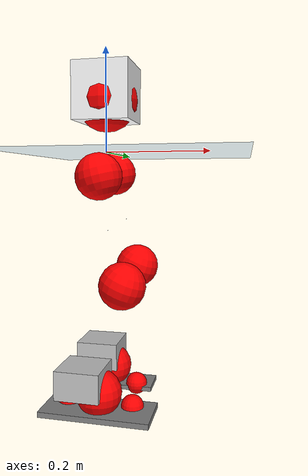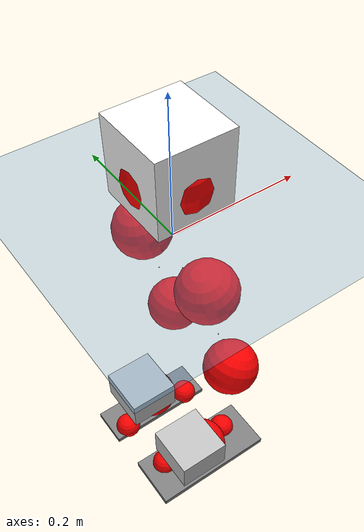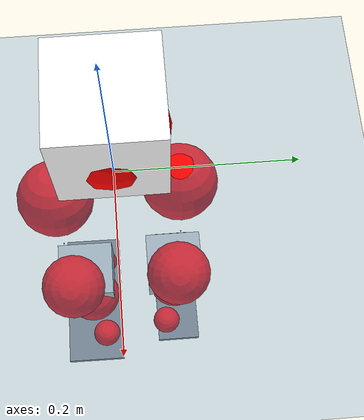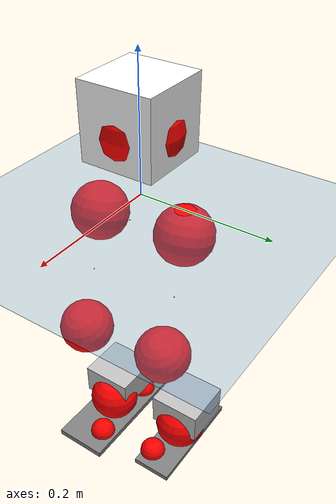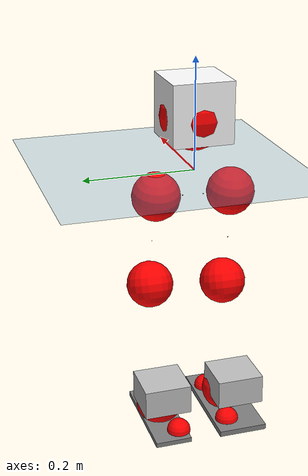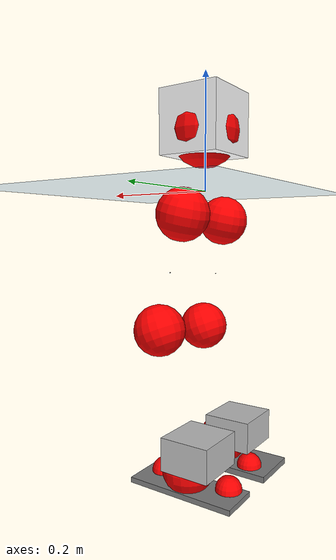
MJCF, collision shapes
<mujoco model="pi_12dof_release_v1">
  <compiler angle="radian" assetdir="assets" balanceinertia="true" inertiafromgeom="false"/>

  <option timestep="0.005" density="1.2" viscosity="2e-05"/>

  <size nkey="1"/>

  <visual>
    <quality shadowsize="8192"/>
    <map shadowclip="0.5"/>
  </visual>

  <default>
    <default class="/">
      <joint armature="0.01" damping="0.01" frictionloss="0.01"/>
      <geom contype="0" conaffinity="0" group="1" solref="-1000 -80"/>
      <site size="0.01 0.005 0.005" group="5"/>
      <general forcelimited="true" biastype="affine" gainprm="20" biasprm="0 -20 -0.5"/>
      <default class="foot">
        <geom size="0.0845 0.036 0.005" type="box" condim="6" group="4" priority="1" friction="0.9 0.2 0.2" solimp="0.015 1 0.005"/>
      </default>
      <default class="reward_collision_sphere">
        <geom group="5" rgba="1 0 0 1"/>
      </default>
    </default>
  </default>

  <asset>
    <texture type="skybox" colorspace="auto" name="//unnamed_texture_0" builtin="gradient" rgb1="0.95 0.95 0.95" rgb2="0.95 0.95 0.95" width="100" height="600"/>
    <texture type="2d" colorspace="auto" name="texplane" builtin="checker" rgb1="0.345 0.575 0.748" rgb2="0.345 0.575 0.748" markrgb="1 1 1" width="512" height="512"/>
    <material name="MatPlane" class="/" texture="texplane" texuniform="true" texrepeat="2 2" specular="0.9"/>
    <mesh name="baselink_1" class="/" file="baselink_1.STL"/>
    <mesh name="r_hip_pitch_link" class="/" file="r_hip_pitch_link.STL"/>
    <mesh name="r_hip_roll_link" class="/" file="r_hip_roll_link.STL"/>
    <mesh name="r_thigh_link" class="/" file="r_thigh_link.STL"/>
    <mesh name="r_calf_link" class="/" file="r_calf_link.STL"/>
    <mesh name="r_ankle_pitch_link" class="/" file="r_ankle_pitch_link.STL"/>
    <mesh name="r_ankle_roll_link" class="/" file="r_ankle_roll_link.STL"/>
    <mesh name="l_hip_pitch_link" class="/" file="l_hip_pitch_link.STL"/>
    <mesh name="l_hip_roll_link" class="/" file="l_hip_roll_link.STL"/>
    <mesh name="l_thigh_link" class="/" file="l_thigh_link.STL"/>
    <mesh name="l_calf_link" class="/" file="l_calf_link.STL"/>
    <mesh name="l_ankle_pitch_link" class="/" file="l_ankle_pitch_link.STL"/>
    <mesh name="l_ankle_roll_link" class="/" file="l_ankle_roll_link.STL"/>
  </asset>

  <worldbody>
    <geom name="floor" class="/" size="100 100 0.125" type="plane" group="0" material="MatPlane"/>
    <light name="toplight_shadow" class="/" pos="0 0 5" dir="0.0990148 0.0990148 -0.990148" type="directional" ambient="0.04 0.04 0.04" diffuse="0.55 0.55 0.55" specular="0.12 0.12 0.12"/>
    <light name="toplight_fill" class="/" pos="0 0 5" dir="0.0990148 0.0990148 -0.990148" type="directional" castshadow="false" ambient="0.04 0.04 0.04" diffuse="0.3 0.3 0.3" specular="0.08 0.08 0.08"/>
    <body name="trunk" pos="0.00088207 0.00220602 -0.00105225" quat="1 1.91702e-05 5.17972e-06 -3.07714e-05">
      <inertial pos="0.00137354 0.00027242 0.0586146" quat="0.698311 0.0102942 5.66636e-05 0.71572" mass="2.85429" diaginertia="0.00644661 0.00577419 0.0224326"/>
      <joint name="//unnamed_joint_0" type="free"/>
      <geom name="//unnamed_geom_1" class="/" type="mesh" density="0" rgba="1 1 1 1" mesh="baselink_1"/>
      <geom name="//unnamed_geom_2" class="/" size="0.054264 0.054264 0.054264" pos="0 0 0.113093" type="box" rgba="1 1 1 1"/>
      <geom name="//unnamed_geom_3" class="reward_collision_sphere" size="0.0596904" pos="0 0 0.098956"/>
      <site name="imu" class="/" pos="0.00319736 0.0276318 -0.0104147" size="0.0108528"/>
      <camera name="track" class="/" pos="0 -1.83047 0" quat="0.707107 0.707107 0 0" mode="trackcom"/>
      <camera name="ego_camera" class="/" pos="0.069521 0 0.254458" quat="-0.5 -0.5 0.5 0.5"/>
      <body name="r_hip_pitch_link" pos="0.00190482 -0.0200145 -0.0457497" quat="0.992411 -0.000795182 -0.122951 -0.00176018">
        <inertial pos="-0.000138003 -0.0519943 -0.00139573" quat="-0.0181083 0.709493 -0.0298822 0.703846" mass="0.449031" diaginertia="7.09384e-05 5.9281e-05 0.000451514"/>
        <joint name="r_hip_pitch_joint" class="/" pos="0 0 0" axis="-0.00236739 -0.999983 0.00533062" stiffness="0.0172687" range="-1.75078 1.28366" armature="0.0104567" damping="0.0356857" frictionloss="0.0121758"/>
        <geom name="//unnamed_geom_4" class="/" type="mesh" density="0" rgba="0.75294 0.75294 0.75294 1" mesh="r_hip_pitch_link"/>
        <geom name="//unnamed_geom_5" class="/" size="0.00054264 0.00054264 0.00054264" type="box" rgba="0.75294 0.75294 0.75294 1"/>
        <body name="r_hip_roll_link" pos="0.00201483 -0.0519043 -0.00169616" quat="1 2.01832e-07 2.4213e-07 -5.58514e-07">
          <inertial pos="-0.000747389 0.00388084 -0.0805226" quat="0.712433 -0.0708819 -0.0835733 0.693131" mass="0.486594" diaginertia="0.000237935 0.000178824 0.000755101"/>
          <joint name="r_hip_roll_joint" class="/" pos="0 0 0" axis="-0.999989 -2.4828e-05 0.00475495" range="-0.0784842 0.426287" armature="0.0121114" damping="0" frictionloss="0.00962433"/>
          <geom name="//unnamed_geom_6" class="/" type="mesh" density="0" rgba="0.75294 0.75294 0.75294 1" mesh="r_hip_roll_link"/>
          <geom name="//unnamed_geom_7" class="/" size="0.00054264 0.00054264 0.00054264" type="box" rgba="0.75294 0.75294 0.75294 1"/>
          <geom name="//unnamed_geom_8" class="reward_collision_sphere" size="0.0434112"/>
          <body name="r_thigh_link" pos="-0.00597964 -0.00433488 -0.0988788" quat="1 -0.00037892 -0.000119405 -0.000415679">
            <inertial pos="-0.00171576 0.000434999 -0.0677293" quat="0.737226 0.67564 -0.00185407 0.00215447" mass="0.137077" diaginertia="8.45853e-05 5.86968e-05 0.000323942"/>
            <joint name="r_thigh_joint" class="/" pos="0 0 0" axis="0.000104884 -0.000160801 -1" range="-0.254527 0.621421" armature="0.012268" damping="0.00431504" frictionloss="0.0138898"/>
            <geom name="//unnamed_geom_9" class="/" type="mesh" density="0" rgba="0.75294 0.75294 0.75294 1" mesh="r_thigh_link"/>
            <geom name="//unnamed_geom_10" class="/" size="0.00054264 0.00054264 0.00054264" type="box" rgba="0.75294 0.75294 0.75294 1"/>
            <body name="r_calf_link" pos="0.00132829 -0.00105546 -0.103766" quat="0.947643 -8.88433e-05 0.319332 2.02187e-06">
              <inertial pos="-0.00324569 -0.000432591 -0.0993337" quat="0.999862 0.00132067 -0.0160799 -0.00396056" mass="0.993572" diaginertia="0.00225666 0.00217532 0.000961992"/>
              <joint name="r_calf_joint" class="/" pos="0 0 0" axis="0.0125305 -0.999889 -0.00808719" stiffness="0.0164788" range="-1.72241 0.640776" armature="0.0118267" damping="0.0191062" frictionloss="0.0108931"/>
              <geom name="//unnamed_geom_11" class="/" type="mesh" density="0" rgba="0.75294 0.75294 0.75294 1" mesh="r_calf_link"/>
              <geom name="//unnamed_geom_12" class="/" size="0.00054264 0.00054264 0.00054264" type="box" rgba="0.75294 0.75294 0.75294 1"/>
              <geom name="//unnamed_geom_13" class="reward_collision_sphere" size="0.0434112"/>
              <body name="r_ankle_pitch_link" pos="0.00129016 0.00181669 -0.195787" quat="0.980013 -0.000851953 -0.198927 -0.000955967">
                <inertial pos="0.00532347 0.00308796 0.00429359" quat="0.0238148 0.696854 0.0108698 0.716735" mass="0.219625" diaginertia="0.000197567 0.000135393 0.000643193"/>
                <joint name="r_ankle_pitch_joint" class="/" pos="0 0 0" axis="0.0091465 -0.999955 -0.00243748" stiffness="0.00704536" range="-1.3122 0.401244" armature="0.0110763" damping="0.0091337" frictionloss="0.00931429"/>
                <geom name="//unnamed_geom_14" class="/" type="mesh" density="0" rgba="0.75294 0.75294 0.75294 1" mesh="r_ankle_pitch_link"/>
                <geom name="//unnamed_geom_15" class="/" size="0.0423259 0.0434112 0.027132" type="box" rgba="0.75294 0.75294 0.75294 1"/>
                <body name="r_ankle_roll_link" pos="0.0745052 0.00719237 0.00251626" quat="1 0.000238263 -0.000703932 0.000228114">
                  <inertial pos="-0.0203386 0.000542169 -0.0263112" quat="0.559331 0.432889 0.431357 0.560078" mass="0.72553" diaginertia="0.000849387 0.000663288 0.00179009"/>
                  <joint name="r_ankle_roll_joint" class="/" pos="0 0 0" axis="-0.999851 -0.00834302 0.015128" stiffness="0.00838005" range="-0.159001 0.208878" armature="0.0131787" damping="0" frictionloss="0.0104932"/>
                  <geom name="//unnamed_geom_16" class="/" type="mesh" density="0" rgba="0.75294 0.75294 0.75294 1" mesh="r_ankle_roll_link"/>
                  <geom name="//unnamed_geom_17" class="/" type="mesh" rgba="0.75294 0.75294 0.75294 1" mesh="r_ankle_roll_link"/>
                  <geom name="right_foot" class="foot" size="0.104743 0.0448594 0.00510864" pos="-0.0472743 0 -0.0622009"/>
                  <geom name="//unnamed_geom_19" class="reward_collision_sphere" size="0.0434112" pos="-0.0463474 0 -0.0282731"/>
                  <geom name="//unnamed_geom_20" class="reward_collision_sphere" size="0.0217056" pos="0.0139042 0.0183047 -0.0565463"/>
                  <geom name="//unnamed_geom_21" class="reward_collision_sphere" size="0.0217056" pos="-0.111234 0.0183047 -0.0565463"/>
                  <site name="right_foot" class="foot" pos="-0.0472743 0 -0.0622009" size="0.0108528"/>
                </body>
              </body>
            </body>
          </body>
        </body>
      </body>
      <body name="l_hip_pitch_link" pos="-0.0033405 0.0200445 -0.0425544" quat="0.992188 -0.000512547 -0.124752 -0.000242775">
        <inertial pos="8.33083e-05 0.0473342 0.00318044" quat="-0.0345429 0.70002 0.0354609 0.712405" mass="0.464252" diaginertia="8.26805e-05 6.61756e-05 0.000564136"/>
        <joint name="l_hip_pitch_joint" class="/" pos="0 0 0" axis="-0.000971515 0.999999 0.000562215" range="-1.27094 1.78118" armature="0.0100641" damping="0.0237108" frictionloss="0.00962087"/>
        <geom name="//unnamed_geom_22" class="/" type="mesh" density="0" rgba="0.75294 0.75294 0.75294 1" mesh="l_hip_pitch_link"/>
        <geom name="//unnamed_geom_23" class="/" size="0.00054264 0.00054264 0.00054264" type="box" rgba="0.75294 0.75294 0.75294 1"/>
        <body name="l_hip_roll_link" pos="0.000897467 0.0488631 0.00248697" quat="1 -0.000553667 -0.000565764 8.66466e-05">
          <inertial pos="0.00140914 0.00324244 -0.0805754" quat="0.703405 -0.061149 -0.0712854 0.704557" mass="0.491866" diaginertia="0.000244823 0.000182412 0.000774067"/>
          <joint name="l_hip_roll_joint" class="/" pos="0 0 0" axis="-0.999995 4.8684e-05 0.00308999" stiffness="0.0049123" range="-0.419135 0.082024" armature="0.0104078" damping="0.0298882" frictionloss="0.0108046"/>
          <geom name="//unnamed_geom_24" class="/" type="mesh" density="0" rgba="0.75294 0.75294 0.75294 1" mesh="l_hip_roll_link"/>
          <geom name="//unnamed_geom_25" class="/" size="0.00054264 0.00054264 0.00054264" type="box" rgba="0.75294 0.75294 0.75294 1"/>
          <geom name="//unnamed_geom_26" class="reward_collision_sphere" size="0.0434112"/>
          <body name="l_thigh_link" pos="3.39182e-05 0.00131829 -0.0963419" quat="1 -1.07045e-05 0.000230199 -3.38973e-05">
            <inertial pos="0.000536191 -0.00138577 -0.0675699" quat="0.671695 0.740782 0.000357194 0.00818389" mass="0.144804" diaginertia="8.53526e-05 6.15389e-05 0.000314811"/>
            <joint name="l_thigh_joint" class="/" pos="0 0 0" axis="-0.000570732 0.000783602 -1" stiffness="0.024443" range="-0.612622 0.282592" armature="0.0112604" damping="0.00971486" frictionloss="0.00975051"/>
            <geom name="//unnamed_geom_27" class="/" type="mesh" density="0" rgba="0.75294 0.75294 0.75294 1" mesh="l_thigh_link"/>
            <geom name="//unnamed_geom_28" class="/" size="0.00054264 0.00054264 0.00054264" type="box" rgba="0.75294 0.75294 0.75294 1"/>
            <body name="l_calf_link" pos="-0.000896293 -0.00249933 -0.0999689" quat="0.947807 0.000574743 0.318844 0.000411573">
              <inertial pos="-0.000258124 0.000186552 -0.0978688" quat="0.999984 0.00323996 0.000301145 0.00468217" mass="1.12579" diaginertia="0.00248207 0.0023121 0.00104984"/>
              <joint name="l_calf_joint" class="/" pos="0 0 0" axis="-0.00098239 0.999999 0.000592791" stiffness="0.00378846" range="-0.753535 1.58233" armature="0.0109044" damping="0.0120954" frictionloss="0.0120519"/>
              <geom name="//unnamed_geom_29" class="/" type="mesh" density="0" rgba="0.75294 0.75294 0.75294 1" mesh="l_calf_link"/>
              <geom name="//unnamed_geom_30" class="/" size="0.00054264 0.00054264 0.00054264" type="box" rgba="0.75294 0.75294 0.75294 1"/>
              <geom name="//unnamed_geom_31" class="reward_collision_sphere" size="0.0434112"/>
              <body name="l_ankle_pitch_link" pos="0.00220877 0.000507781 -0.202355" quat="0.980068 2.05599e-06 -0.198664 3.41839e-06">
                <inertial pos="0.00425773 -0.00166582 0.000495231" quat="-0.0021688 0.706431 0.00193672 0.707776" mass="0.237137" diaginertia="0.0002202 0.000143254 0.000677316"/>
                <joint name="l_ankle_pitch_joint" class="/" pos="0 0 0" axis="4.01805e-05 1 -3.27993e-05" stiffness="0.00103342" range="-0.435827 1.26338" armature="0.011769" damping="0" frictionloss="0.0122184"/>
                <geom name="//unnamed_geom_32" class="/" type="mesh" density="0" rgba="0.75294 0.75294 0.75294 1" mesh="l_ankle_pitch_link"/>
                <geom name="//unnamed_geom_33" class="/" size="0.0423259 0.0434112 0.027132" type="box" rgba="0.75294 0.75294 0.75294 1"/>
                <body name="l_ankle_roll_link" pos="0.0653446 0.000309751 -0.0021591" quat="0.999999 -0.000687935 0.000279774 0.00107986">
                  <inertial pos="-0.0212005 0.000329713 -0.0194696" quat="0.5523 0.437651 0.431601 0.563158" mass="0.677535" diaginertia="0.000754093 0.000653216 0.00162946"/>
                  <joint name="l_ankle_roll_joint" class="/" pos="0 0 0" axis="-0.999949 0.00598631 0.00813332" range="-0.114256 0.149604" armature="0.0100809" damping="0.00974814" frictionloss="0.0109855"/>
                  <geom name="//unnamed_geom_34" class="/" type="mesh" density="0" rgba="0.75294 0.75294 0.75294 1" mesh="l_ankle_roll_link"/>
                  <geom name="//unnamed_geom_35" class="/" type="mesh" rgba="0.75294 0.75294 0.75294 1" mesh="l_ankle_roll_link"/>
                  <geom name="left_foot" class="foot" size="0.0938627 0.0331649 0.00433307" pos="-0.0472743 0 -0.0622009"/>
                  <geom name="//unnamed_geom_37" class="reward_collision_sphere" size="0.0434112" pos="-0.0463474 0 -0.0282731"/>
                  <geom name="//unnamed_geom_38" class="reward_collision_sphere" size="0.0217056" pos="0.0139042 -0.0183047 -0.0565463"/>
                  <geom name="//unnamed_geom_39" class="reward_collision_sphere" size="0.0217056" pos="-0.111234 -0.0183047 -0.0565463"/>
                  <site name="left_foot" class="foot" pos="-0.0472743 0 -0.0622009" size="0.0108528"/>
                </body>
              </body>
            </body>
          </body>
        </body>
      </body>
    </body>
  </worldbody>

  <contact>
    <pair class="/" geom1="floor" geom2="right_foot" name="//unnamed_contact_1"/>
    <pair class="/" geom1="floor" geom2="left_foot" name="//unnamed_contact_0"/>
  </contact>

  <actuator>
    <general name="r_hip_pitch_joint" class="/" joint="r_hip_pitch_joint" forcerange="-22.5704 22.5704" gainprm="22.0682" biasprm="0 -22.0682 -0.56389"/>
    <general name="r_hip_roll_joint" class="/" joint="r_hip_roll_joint" forcerange="-25.4193 25.4193" gainprm="22.0682" biasprm="0 -22.0682 -0.56389"/>
    <general name="r_thigh_joint" class="/" joint="r_thigh_joint" forcerange="-23.6405 23.6405" gainprm="22.0682" biasprm="0 -22.0682 -0.56389"/>
    <general name="r_calf_joint" class="/" joint="r_calf_joint" forcerange="-20.7988 20.7988" gainprm="22.0682" biasprm="0 -22.0682 -0.56389"/>
    <general name="r_ankle_pitch_joint" class="/" joint="r_ankle_pitch_joint" forcerange="-24.4982 24.4982" gainprm="22.0682" biasprm="0 -22.0682 -0.56389"/>
    <general name="r_ankle_roll_joint" class="/" joint="r_ankle_roll_joint" forcerange="-23.3741 23.3741" gainprm="22.0682" biasprm="0 -22.0682 -0.56389"/>
    <general name="l_hip_pitch_joint" class="/" joint="l_hip_pitch_joint" forcerange="-25.1434 25.1434" gainprm="22.0682" biasprm="0 -22.0682 -0.56389"/>
    <general name="l_hip_roll_joint" class="/" joint="l_hip_roll_joint" forcerange="-20.6498 20.6498" gainprm="22.0682" biasprm="0 -22.0682 -0.56389"/>
    <general name="l_thigh_joint" class="/" joint="l_thigh_joint" forcerange="-25.7895 25.7895" gainprm="22.0682" biasprm="0 -22.0682 -0.56389"/>
    <general name="l_calf_joint" class="/" joint="l_calf_joint" forcerange="-24.2078 24.2078" gainprm="22.0682" biasprm="0 -22.0682 -0.56389"/>
    <general name="l_ankle_pitch_joint" class="/" joint="l_ankle_pitch_joint" forcerange="-22.9366 22.9366" gainprm="22.0682" biasprm="0 -22.0682 -0.56389"/>
    <general name="l_ankle_roll_joint" class="/" joint="l_ankle_roll_joint" forcerange="-17.7533 17.7533" gainprm="22.0682" biasprm="0 -22.0682 -0.56389"/>
  </actuator>

  <sensor>
    <gyro site="imu" name="imu_angular_velocity"/>
    <velocimeter site="imu" name="imu_linear_velocity"/>
    <framelinvel objtype="site" objname="left_foot" name="left_foot_global_linear_velocity"/>
    <framelinvel objtype="site" objname="right_foot" name="right_foot_global_linear_velocity"/>
  </sensor>

  <keyframe>
    <key name="home" qpos="0 0 0.291 1 0 0 0 0.4 0 0 -0.8 0.4 0 -0.4 0 0 0.8 -0.4 0"/>
  </keyframe>
</mujoco>
